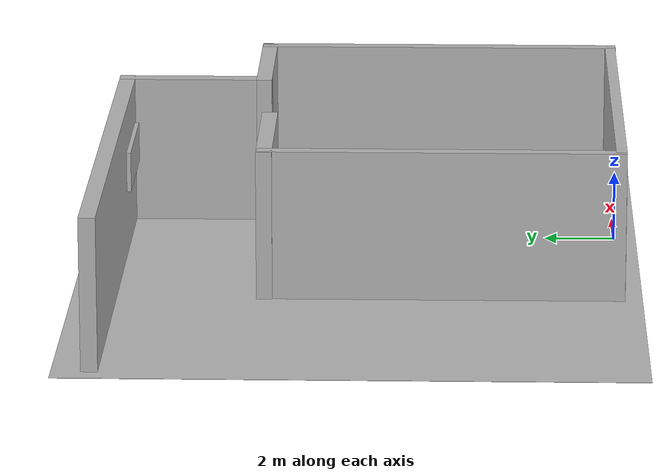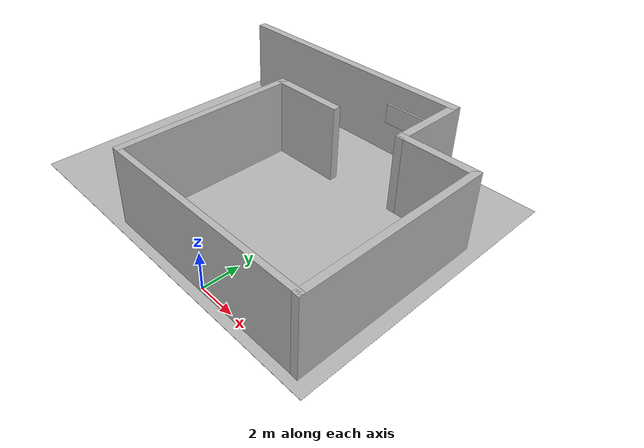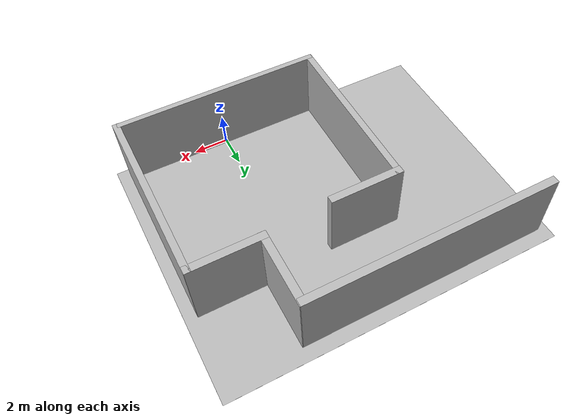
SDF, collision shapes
<?xml version="1.0"?>
<sdf version="1.3">
  <model name="Starting Pen">
    <static>true</static>
    <link name="link">
      <collision name="wall_01">
        <pose>-0.0 0 2.14 0 0 0</pose>
        <geometry>
          <box>
            <size>12.15 0.31 4.28</size>
          </box>
        </geometry>
      </collision>

      <collision name="wall_02">
        <pose>-5.28 14.3205 2.14 0 0 0</pose>
        <geometry>
          <box>
            <size>14.8 0.46 4.28</size>
          </box>
        </geometry>
      </collision>

      <collision name="wall_03">
        <pose>-5.91 5.0 2.14 0 0 0</pose>
        <geometry>
          <box>
            <size>0.385 10.3 4.28</size>
          </box>
        </geometry>
      </collision>

      <collision name="wall_04">
        <pose>5.91 5.161 2.14 0 0 0</pose>
        <geometry>
          <box>
            <size>0.385 10.66 4.28</size>
          </box>
        </geometry>
      </collision>

      <collision name="wall_05">
        <pose>3.9 10.285 2.14 0 0 0</pose>
        <geometry>
          <box>
            <size>4.38 0.45 4.28</size>
          </box>
        </geometry>
      </collision>

      <collision name="wall_06">
        <pose>-4.0 9.95 2.14 0 0 0</pose>
        <geometry>
          <box>
            <size>4.25 0.45 4.28</size>
          </box>
        </geometry>
      </collision>

      <collision name="wall_07">
        <pose>1.94 12.3 2.14 0 0 0</pose>
        <geometry>
          <box>
            <size>0.45 4.5 4.28</size>
          </box>
        </geometry>
      </collision>

      <collision name="wall_arrow">
        <pose>-0.232 14.03 2.46 0 0 0</pose>
        <geometry>
          <box>
            <size>3.33 0.12 1.16</size>
          </box>
        </geometry>
      </collision>

      <collision name="collision_floor">
        <pose>-3.21 7.355 0 0 0 0</pose>
        <geometry>
          <box>
            <size>20 16 0.01</size>
          </box>
        </geometry>
        <surface>
          <friction>
            <ode>
              <mu>100</mu>
              <mu2>50</mu2>
            </ode>
          </friction>
        </surface>
      </collision>

      <visual name="visual_osrf">
        <pose>-5.74 4.99 3 0 0 0</pose>
        <geometry>
          <box>
            <size>0.01 6 1.0</size>
          </box>
        </geometry>
        <material>
          <script>
            <uri>model://../model_source/models/starting_pen/materials/scripts</uri>
            <uri>model://../model_source/models/starting_pen/materials/textures</uri>
            <name>StartingPen/OSRF</name>
          </script>
        </material>
      </visual>

      <visual name="visual_osrf_2">
        <pose>5.74 4.99 3 0 0 0</pose>
        <geometry>
          <box>
            <size>0.01 6 1.0</size>
          </box>
        </geometry>
        <material>
          <script>
            <uri>model://../model_source/models/starting_pen/materials/scripts</uri>
            <uri>model://../model_source/models/starting_pen/materials/textures</uri>
            <name>StartingPen/OSRF</name>
          </script>
        </material>
      </visual>

      <visual name="visual">
        <geometry>
          <mesh>
            <uri>model://../model_source/models/starting_pen/meshes/starting_pen.dae</uri>
          </mesh>
        </geometry>
      </visual>

      <visual name='visual_floor_0'>
        <pose>-12.21 0.35 0 0 0 0</pose>

        <geometry>
          <box>
            <size>2 2 0.01</size>
          </box>
        </geometry>
        <material>
          <script>
            <uri>model://../model_source/models/starting_pen/materials/scripts</uri>
            <uri>model://../model_source/models/starting_pen/materials/textures</uri>
            <name>StartingPen/Floor</name>
          </script>
        </material>
      </visual>

      <visual name='visual_floor_1'>
        <pose>-10.21 0.35 0 0 0 0</pose>

        <geometry>
          <box>
            <size>2 2 0.01</size>
          </box>
        </geometry>
        <material>
          <script>
            <uri>model://../model_source/models/starting_pen/materials/scripts</uri>
            <uri>model://../model_source/models/starting_pen/materials/textures</uri>
            <name>StartingPen/Floor</name>
          </script>
        </material>
      </visual>

      <visual name='visual_floor_2'>
        <pose>-8.21 0.35 0 0 0 0</pose>

        <geometry>
          <box>
            <size>2 2 0.01</size>
          </box>
        </geometry>
        <material>
          <script>
            <uri>model://../model_source/models/starting_pen/materials/scripts</uri>
            <uri>model://../model_source/models/starting_pen/materials/textures</uri>
            <name>StartingPen/Floor</name>
          </script>
        </material>
      </visual>

      <visual name='visual_floor_3'>
        <pose>-6.21 0.35 0 0 0 0</pose>

        <geometry>
          <box>
            <size>2 2 0.01</size>
          </box>
        </geometry>
        <material>
          <script>
            <uri>model://../model_source/models/starting_pen/materials/scripts</uri>
            <uri>model://../model_source/models/starting_pen/materials/textures</uri>
            <name>StartingPen/Floor</name>
          </script>
        </material>
      </visual>

      <visual name='visual_floor_4'>
        <pose>-4.21 0.35 0 0 0 0</pose>

        <geometry>
          <box>
            <size>2 2 0.01</size>
          </box>
        </geometry>
        <material>
          <script>
            <uri>model://../model_source/models/starting_pen/materials/scripts</uri>
            <uri>model://../model_source/models/starting_pen/materials/textures</uri>
            <name>StartingPen/Floor</name>
          </script>
        </material>
      </visual>

      <visual name='visual_floor_5'>
        <pose>-2.21 0.35 0 0 0 0</pose>

        <geometry>
          <box>
            <size>2 2 0.01</size>
          </box>
        </geometry>
        <material>
          <script>
            <uri>model://../model_source/models/starting_pen/materials/scripts</uri>
            <uri>model://../model_source/models/starting_pen/materials/textures</uri>
            <name>StartingPen/Floor</name>
          </script>
        </material>
      </visual>

      <visual name='visual_floor_6'>
        <pose>-0.21 0.35 0 0 0 0</pose>

        <geometry>
          <box>
            <size>2 2 0.01</size>
          </box>
        </geometry>
        <material>
          <script>
            <uri>model://../model_source/models/starting_pen/materials/scripts</uri>
            <uri>model://../model_source/models/starting_pen/materials/textures</uri>
            <name>StartingPen/Floor</name>
          </script>
        </material>
      </visual>

      <visual name='visual_floor_7'>
        <pose>1.79 0.35 0 0 0 1.5707</pose>

        <geometry>
          <box>
            <size>2 2 0.01</size>
          </box>
        </geometry>
        <material>
          <script>
            <uri>model://../model_source/models/starting_pen/materials/scripts</uri>
            <uri>model://../model_source/models/starting_pen/materials/textures</uri>
            <name>StartingPen/FloorStripped</name>
          </script>
        </material>
      </visual>

      <visual name='visual_floor_8'>
        <pose>3.79 0.35 0 0 0 0</pose>

        <geometry>
          <box>
            <size>2 2 0.01</size>
          </box>
        </geometry>
        <material>
          <script>
            <uri>model://../model_source/models/starting_pen/materials/scripts</uri>
            <uri>model://../model_source/models/starting_pen/materials/textures</uri>
            <name>StartingPen/Floor</name>
          </script>
        </material>
      </visual>

      <visual name='visual_floor_9'>
        <pose>5.79 0.35 0 0 0 0</pose>

        <geometry>
          <box>
            <size>2 2 0.01</size>
          </box>
        </geometry>
        <material>
          <script>
            <uri>model://../model_source/models/starting_pen/materials/scripts</uri>
            <uri>model://../model_source/models/starting_pen/materials/textures</uri>
            <name>StartingPen/Floor</name>
          </script>
        </material>
      </visual>

      <visual name='visual_floor_10'>
        <pose>-12.21 2.35 0 0 0 1.5707</pose>

        <geometry>
          <box>
            <size>2 2 0.01</size>
          </box>
        </geometry>
        <material>
          <script>
            <uri>model://../model_source/models/starting_pen/materials/scripts</uri>
            <uri>model://../model_source/models/starting_pen/materials/textures</uri>
            <name>StartingPen/FloorStripped</name>
          </script>
        </material>
      </visual>

      <visual name='visual_floor_11'>
        <pose>-10.21 2.35 0 0 0 0</pose>

        <geometry>
          <box>
            <size>2 2 0.01</size>
          </box>
        </geometry>
        <material>
          <script>
            <uri>model://../model_source/models/starting_pen/materials/scripts</uri>
            <uri>model://../model_source/models/starting_pen/materials/textures</uri>
            <name>StartingPen/Floor</name>
          </script>
        </material>
      </visual>

      <visual name='visual_floor_12'>
        <pose>-8.21 2.35 0 0 0 0</pose>

        <geometry>
          <box>
            <size>2 2 0.01</size>
          </box>
        </geometry>
        <material>
          <script>
            <uri>model://../model_source/models/starting_pen/materials/scripts</uri>
            <uri>model://../model_source/models/starting_pen/materials/textures</uri>
            <name>StartingPen/Floor</name>
          </script>
        </material>
      </visual>

      <visual name='visual_floor_13'>
        <pose>-6.21 2.35 0 0 0 0</pose>

        <geometry>
          <box>
            <size>2 2 0.01</size>
          </box>
        </geometry>
        <material>
          <script>
            <uri>model://../model_source/models/starting_pen/materials/scripts</uri>
            <uri>model://../model_source/models/starting_pen/materials/textures</uri>
            <name>StartingPen/Floor</name>
          </script>
        </material>
      </visual>

      <visual name='visual_floor_14'>
        <pose>-4.21 2.35 0 0 0 0</pose>

        <geometry>
          <box>
            <size>2 2 0.01</size>
          </box>
        </geometry>
        <material>
          <script>
            <uri>model://../model_source/models/starting_pen/materials/scripts</uri>
            <uri>model://../model_source/models/starting_pen/materials/textures</uri>
            <name>StartingPen/Floor</name>
          </script>
        </material>
      </visual>

      <visual name='visual_floor_15'>
        <pose>-2.21 2.35 0 0 0 0</pose>

        <geometry>
          <box>
            <size>2 2 0.01</size>
          </box>
        </geometry>
        <material>
          <script>
            <uri>model://../model_source/models/starting_pen/materials/scripts</uri>
            <uri>model://../model_source/models/starting_pen/materials/textures</uri>
            <name>StartingPen/Floor</name>
          </script>
        </material>
      </visual>

      <visual name='visual_floor_16'>
        <pose>-0.21 2.35 0 0 0 1.5707</pose>

        <geometry>
          <box>
            <size>2 2 0.01</size>
          </box>
        </geometry>
        <material>
          <script>
            <uri>model://../model_source/models/starting_pen/materials/scripts</uri>
            <uri>model://../model_source/models/starting_pen/materials/textures</uri>
            <name>StartingPen/FloorStripped</name>
          </script>
        </material>
      </visual>

      <visual name='visual_floor_17'>
        <pose>1.79 2.35 0 0 0 1.5707</pose>

        <geometry>
          <box>
            <size>2 2 0.01</size>
          </box>
        </geometry>
        <material>
          <script>
            <uri>model://../model_source/models/starting_pen/materials/scripts</uri>
            <uri>model://../model_source/models/starting_pen/materials/textures</uri>
            <name>StartingPen/Floor</name>
          </script>
        </material>
      </visual>

      <visual name='visual_floor_18'>
        <pose>3.79 2.35 0 0 0 0</pose>

        <geometry>
          <box>
            <size>2 2 0.01</size>
          </box>
        </geometry>
        <material>
          <script>
            <uri>model://../model_source/models/starting_pen/materials/scripts</uri>
            <uri>model://../model_source/models/starting_pen/materials/textures</uri>
            <name>StartingPen/Floor</name>
          </script>
        </material>
      </visual>

      <visual name='visual_floor_19'>
        <pose>5.79 2.35 0 0 0 0</pose>

        <geometry>
          <box>
            <size>2 2 0.01</size>
          </box>
        </geometry>
        <material>
          <script>
            <uri>model://../model_source/models/starting_pen/materials/scripts</uri>
            <uri>model://../model_source/models/starting_pen/materials/textures</uri>
            <name>StartingPen/Floor</name>
          </script>
        </material>
      </visual>

      <visual name='visual_floor_20'>
        <pose>-12.21 4.35 0 0 0 0</pose>

        <geometry>
          <box>
            <size>2 2 0.01</size>
          </box>
        </geometry>
        <material>
          <script>
            <uri>model://../model_source/models/starting_pen/materials/scripts</uri>
            <uri>model://../model_source/models/starting_pen/materials/textures</uri>
            <name>StartingPen/Floor</name>
          </script>
        </material>
      </visual>

      <visual name='visual_floor_21'>
        <pose>-10.21 4.35 0 0 0 0</pose>

        <geometry>
          <box>
            <size>2 2 0.01</size>
          </box>
        </geometry>
        <material>
          <script>
            <uri>model://../model_source/models/starting_pen/materials/scripts</uri>
            <uri>model://../model_source/models/starting_pen/materials/textures</uri>
            <name>StartingPen/Floor</name>
          </script>
        </material>
      </visual>

      <visual name='visual_floor_22'>
        <pose>-8.21 4.35 0 0 0 1.5707</pose>

        <geometry>
          <box>
            <size>2 2 0.01</size>
          </box>
        </geometry>
        <material>
          <script>
            <uri>model://../model_source/models/starting_pen/materials/scripts</uri>
            <uri>model://../model_source/models/starting_pen/materials/textures</uri>
            <name>StartingPen/FloorStripped</name>
          </script>
        </material>
      </visual>

      <visual name='visual_floor_23'>
        <pose>-6.21 4.35 0 0 0 0</pose>

        <geometry>
          <box>
            <size>2 2 0.01</size>
          </box>
        </geometry>
        <material>
          <script>
            <uri>model://../model_source/models/starting_pen/materials/scripts</uri>
            <uri>model://../model_source/models/starting_pen/materials/textures</uri>
            <name>StartingPen/Floor</name>
          </script>
        </material>
      </visual>

      <visual name='visual_floor_24'>
        <pose>-4.21 4.35 0 0 0 0</pose>

        <geometry>
          <box>
            <size>2 2 0.01</size>
          </box>
        </geometry>
        <material>
          <script>
            <uri>model://../model_source/models/starting_pen/materials/scripts</uri>
            <uri>model://../model_source/models/starting_pen/materials/textures</uri>
            <name>StartingPen/Floor</name>
          </script>
        </material>
      </visual>

      <visual name='visual_floor_25'>
        <pose>-2.21 4.35 0 0 0 0</pose>

        <geometry>
          <box>
            <size>2 2 0.01</size>
          </box>
        </geometry>
        <material>
          <script>
            <uri>model://../model_source/models/starting_pen/materials/scripts</uri>
            <uri>model://../model_source/models/starting_pen/materials/textures</uri>
            <name>StartingPen/Floor</name>
          </script>
        </material>
      </visual>

      <visual name='visual_floor_26'>
        <pose>-0.21 4.35 0 0 0 0</pose>

        <geometry>
          <box>
            <size>2 2 0.01</size>
          </box>
        </geometry>
        <material>
          <script>
            <uri>model://../model_source/models/starting_pen/materials/scripts</uri>
            <uri>model://../model_source/models/starting_pen/materials/textures</uri>
            <name>StartingPen/Floor</name>
          </script>
        </material>
      </visual>

      <visual name='visual_floor_27'>
        <pose>1.79 4.35 0 0 0 0</pose>

        <geometry>
          <box>
            <size>2 2 0.01</size>
          </box>
        </geometry>
        <material>
          <script>
            <uri>model://../model_source/models/starting_pen/materials/scripts</uri>
            <uri>model://../model_source/models/starting_pen/materials/textures</uri>
            <name>StartingPen/Floor</name>
          </script>
        </material>
      </visual>

      <visual name='visual_floor_28'>
        <pose>3.79 4.35 0 0 0 0</pose>

        <geometry>
          <box>
            <size>2 2 0.01</size>
          </box>
        </geometry>
        <material>
          <script>
            <uri>model://../model_source/models/starting_pen/materials/scripts</uri>
            <uri>model://../model_source/models/starting_pen/materials/textures</uri>
            <name>StartingPen/Floor</name>
          </script>
        </material>
      </visual>

      <visual name='visual_floor_29'>
        <pose>5.79 4.35 0 0 0 1.5707</pose>

        <geometry>
          <box>
            <size>2 2 0.01</size>
          </box>
        </geometry>
        <material>
          <script>
            <uri>model://../model_source/models/starting_pen/materials/scripts</uri>
            <uri>model://../model_source/models/starting_pen/materials/textures</uri>
            <name>StartingPen/FloorStripped</name>
          </script>
        </material>
      </visual>

      <visual name='visual_floor_30'>
        <pose>-12.21 6.35 0 0 0 0</pose>

        <geometry>
          <box>
            <size>2 2 0.01</size>
          </box>
        </geometry>
        <material>
          <script>
            <uri>model://../model_source/models/starting_pen/materials/scripts</uri>
            <uri>model://../model_source/models/starting_pen/materials/textures</uri>
            <name>StartingPen/Floor</name>
          </script>
        </material>
      </visual>

      <visual name='visual_floor_31'>
        <pose>-10.21 6.35 0 0 0 0</pose>

        <geometry>
          <box>
            <size>2 2 0.01</size>
          </box>
        </geometry>
        <material>
          <script>
            <uri>model://../model_source/models/starting_pen/materials/scripts</uri>
            <uri>model://../model_source/models/starting_pen/materials/textures</uri>
            <name>StartingPen/Floor</name>
          </script>
        </material>
      </visual>

      <visual name='visual_floor_32'>
        <pose>-8.21 6.35 0 0 0 0</pose>

        <geometry>
          <box>
            <size>2 2 0.01</size>
          </box>
        </geometry>
        <material>
          <script>
            <uri>model://../model_source/models/starting_pen/materials/scripts</uri>
            <uri>model://../model_source/models/starting_pen/materials/textures</uri>
            <name>StartingPen/Floor</name>
          </script>
        </material>
      </visual>

      <visual name='visual_floor_33'>
        <pose>-6.21 6.35 0 0 0 1.5707</pose>

        <geometry>
          <box>
            <size>2 2 0.01</size>
          </box>
        </geometry>
        <material>
          <script>
            <uri>model://../model_source/models/starting_pen/materials/scripts</uri>
            <uri>model://../model_source/models/starting_pen/materials/textures</uri>
            <name>StartingPen/FloorStripped</name>
          </script>
        </material>
      </visual>

      <visual name='visual_floor_34'>
        <pose>-4.21 6.35 0 0 0 0</pose>

        <geometry>
          <box>
            <size>2 2 0.01</size>
          </box>
        </geometry>
        <material>
          <script>
            <uri>model://../model_source/models/starting_pen/materials/scripts</uri>
            <uri>model://../model_source/models/starting_pen/materials/textures</uri>
            <name>StartingPen/Floor</name>
          </script>
        </material>
      </visual>

      <visual name='visual_floor_35'>
        <pose>-2.21 6.35 0 0 0 1.5707</pose>

        <geometry>
          <box>
            <size>2 2 0.01</size>
          </box>
        </geometry>
        <material>
          <script>
            <uri>model://../model_source/models/starting_pen/materials/scripts</uri>
            <uri>model://../model_source/models/starting_pen/materials/textures</uri>
            <name>StartingPen/FloorStripped</name>
          </script>
        </material>
      </visual>

      <visual name='visual_floor_36'>
        <pose>-0.21 6.35 0 0 0 0</pose>

        <geometry>
          <box>
            <size>2 2 0.01</size>
          </box>
        </geometry>
        <material>
          <script>
            <uri>model://../model_source/models/starting_pen/materials/scripts</uri>
            <uri>model://../model_source/models/starting_pen/materials/textures</uri>
            <name>StartingPen/Floor</name>
          </script>
        </material>
      </visual>

      <visual name='visual_floor_37'>
        <pose>1.79 6.35 0 0 0 0</pose>

        <geometry>
          <box>
            <size>2 2 0.01</size>
          </box>
        </geometry>
        <material>
          <script>
            <uri>model://../model_source/models/starting_pen/materials/scripts</uri>
            <uri>model://../model_source/models/starting_pen/materials/textures</uri>
            <name>StartingPen/Floor</name>
          </script>
        </material>
      </visual>

      <visual name='visual_floor_38'>
        <pose>3.79 6.35 0 0 0 0</pose>

        <geometry>
          <box>
            <size>2 2 0.01</size>
          </box>
        </geometry>
        <material>
          <script>
            <uri>model://../model_source/models/starting_pen/materials/scripts</uri>
            <uri>model://../model_source/models/starting_pen/materials/textures</uri>
            <name>StartingPen/Floor</name>
          </script>
        </material>
      </visual>

      <visual name='visual_floor_39'>
        <pose>5.79 6.35 0 0 0 0</pose>

        <geometry>
          <box>
            <size>2 2 0.01</size>
          </box>
        </geometry>
        <material>
          <script>
            <uri>model://../model_source/models/starting_pen/materials/scripts</uri>
            <uri>model://../model_source/models/starting_pen/materials/textures</uri>
            <name>StartingPen/Floor</name>
          </script>
        </material>
      </visual>

      <visual name='visual_floor_40'>
        <pose>-12.21 8.35 0 0 0 0</pose>

        <geometry>
          <box>
            <size>2 2 0.01</size>
          </box>
        </geometry>
        <material>
          <script>
            <uri>model://../model_source/models/starting_pen/materials/scripts</uri>
            <uri>model://../model_source/models/starting_pen/materials/textures</uri>
            <name>StartingPen/Floor</name>
          </script>
        </material>
      </visual>

      <visual name='visual_floor_41'>
        <pose>-10.21 8.35 0 0 0 0</pose>

        <geometry>
          <box>
            <size>2 2 0.01</size>
          </box>
        </geometry>
        <material>
          <script>
            <uri>model://../model_source/models/starting_pen/materials/scripts</uri>
            <uri>model://../model_source/models/starting_pen/materials/textures</uri>
            <name>StartingPen/Floor</name>
          </script>
        </material>
      </visual>

      <visual name='visual_floor_42'>
        <pose>-8.21 8.35 0 0 0 1.5707</pose>

        <geometry>
          <box>
            <size>2 2 0.01</size>
          </box>
        </geometry>
        <material>
          <script>
            <uri>model://../model_source/models/starting_pen/materials/scripts</uri>
            <uri>model://../model_source/models/starting_pen/materials/textures</uri>
            <name>StartingPen/FloorStripped</name>
          </script>
        </material>
      </visual>

      <visual name='visual_floor_43'>
        <pose>-6.21 8.35 0 0 0 0</pose>

        <geometry>
          <box>
            <size>2 2 0.01</size>
          </box>
        </geometry>
        <material>
          <script>
            <uri>model://../model_source/models/starting_pen/materials/scripts</uri>
            <uri>model://../model_source/models/starting_pen/materials/textures</uri>
            <name>StartingPen/Floor</name>
          </script>
        </material>
      </visual>

      <visual name='visual_floor_44'>
        <pose>-4.21 8.35 0 0 0 0</pose>

        <geometry>
          <box>
            <size>2 2 0.01</size>
          </box>
        </geometry>
        <material>
          <script>
            <uri>model://../model_source/models/starting_pen/materials/scripts</uri>
            <uri>model://../model_source/models/starting_pen/materials/textures</uri>
            <name>StartingPen/Floor</name>
          </script>
        </material>
      </visual>

      <visual name='visual_floor_45'>
        <pose>-2.21 8.35 0 0 0 0</pose>

        <geometry>
          <box>
            <size>2 2 0.01</size>
          </box>
        </geometry>
        <material>
          <script>
            <uri>model://../model_source/models/starting_pen/materials/scripts</uri>
            <uri>model://../model_source/models/starting_pen/materials/textures</uri>
            <name>StartingPen/Floor</name>
          </script>
        </material>
      </visual>

      <visual name='visual_floor_46'>
        <pose>-0.21 8.35 0 0 0 1.5707</pose>

        <geometry>
          <box>
            <size>2 2 0.01</size>
          </box>
        </geometry>
        <material>
          <script>
            <uri>model://../model_source/models/starting_pen/materials/scripts</uri>
            <uri>model://../model_source/models/starting_pen/materials/textures</uri>
            <name>StartingPen/FloorStripped</name>
          </script>
        </material>
      </visual>

      <visual name='visual_floor_47'>
        <pose>1.79 8.35 0 0 0 0</pose>

        <geometry>
          <box>
            <size>2 2 0.01</size>
          </box>
        </geometry>
        <material>
          <script>
            <uri>model://../model_source/models/starting_pen/materials/scripts</uri>
            <uri>model://../model_source/models/starting_pen/materials/textures</uri>
            <name>StartingPen/Floor</name>
          </script>
        </material>
      </visual>

      <visual name='visual_floor_48'>
        <pose>3.79 8.35 0 0 0 0</pose>

        <geometry>
          <box>
            <size>2 2 0.01</size>
          </box>
        </geometry>
        <material>
          <script>
            <uri>model://../model_source/models/starting_pen/materials/scripts</uri>
            <uri>model://../model_source/models/starting_pen/materials/textures</uri>
            <name>StartingPen/Floor</name>
          </script>
        </material>
      </visual>

      <visual name='visual_floor_49'>
        <pose>5.79 8.35 0 0 0 0</pose>

        <geometry>
          <box>
            <size>2 2 0.01</size>
          </box>
        </geometry>
        <material>
          <script>
            <uri>model://../model_source/models/starting_pen/materials/scripts</uri>
            <uri>model://../model_source/models/starting_pen/materials/textures</uri>
            <name>StartingPen/Floor</name>
          </script>
        </material>
      </visual>

      <visual name='visual_floor_50'>
        <pose>-12.21 10.35 0 0 0 0</pose>

        <geometry>
          <box>
            <size>2 2 0.01</size>
          </box>
        </geometry>
        <material>
          <script>
            <uri>model://../model_source/models/starting_pen/materials/scripts</uri>
            <uri>model://../model_source/models/starting_pen/materials/textures</uri>
            <name>StartingPen/Floor</name>
          </script>
        </material>
      </visual>

      <visual name='visual_floor_51'>
        <pose>-10.21 10.35 0 0 0 0</pose>

        <geometry>
          <box>
            <size>2 2 0.01</size>
          </box>
        </geometry>
        <material>
          <script>
            <uri>model://../model_source/models/starting_pen/materials/scripts</uri>
            <uri>model://../model_source/models/starting_pen/materials/textures</uri>
            <name>StartingPen/Floor</name>
          </script>
        </material>
      </visual>

      <visual name='visual_floor_52'>
        <pose>-8.21 10.35 0 0 0 0</pose>

        <geometry>
          <box>
            <size>2 2 0.01</size>
          </box>
        </geometry>
        <material>
          <script>
            <uri>model://../model_source/models/starting_pen/materials/scripts</uri>
            <uri>model://../model_source/models/starting_pen/materials/textures</uri>
            <name>StartingPen/Floor</name>
          </script>
        </material>
      </visual>

      <visual name='visual_floor_53'>
        <pose>-6.21 10.35 0 0 0 1.5707</pose>

        <geometry>
          <box>
            <size>2 2 0.01</size>
          </box>
        </geometry>
        <material>
          <script>
            <uri>model://../model_source/models/starting_pen/materials/scripts</uri>
            <uri>model://../model_source/models/starting_pen/materials/textures</uri>
            <name>StartingPen/FloorStripped</name>
          </script>
        </material>
      </visual>

      <visual name='visual_floor_54'>
        <pose>-4.21 10.35 0 0 0 0</pose>

        <geometry>
          <box>
            <size>2 2 0.01</size>
          </box>
        </geometry>
        <material>
          <script>
            <uri>model://../model_source/models/starting_pen/materials/scripts</uri>
            <uri>model://../model_source/models/starting_pen/materials/textures</uri>
            <name>StartingPen/Floor</name>
          </script>
        </material>
      </visual>

      <visual name='visual_floor_55'>
        <pose>-2.21 10.35 0 0 0 0</pose>

        <geometry>
          <box>
            <size>2 2 0.01</size>
          </box>
        </geometry>
        <material>
          <script>
            <uri>model://../model_source/models/starting_pen/materials/scripts</uri>
            <uri>model://../model_source/models/starting_pen/materials/textures</uri>
            <name>StartingPen/Floor</name>
          </script>
        </material>
      </visual>

      <visual name='visual_floor_56'>
        <pose>-0.21 10.35 0 0 0 0</pose>

        <geometry>
          <box>
            <size>2 2 0.01</size>
          </box>
        </geometry>
        <material>
          <script>
            <uri>model://../model_source/models/starting_pen/materials/scripts</uri>
            <uri>model://../model_source/models/starting_pen/materials/textures</uri>
            <name>StartingPen/Floor</name>
          </script>
        </material>
      </visual>

      <visual name='visual_floor_57'>
        <pose>1.79 10.35 0 0 0 0</pose>

        <geometry>
          <box>
            <size>2 2 0.01</size>
          </box>
        </geometry>
        <material>
          <script>
            <uri>model://../model_source/models/starting_pen/materials/scripts</uri>
            <uri>model://../model_source/models/starting_pen/materials/textures</uri>
            <name>StartingPen/Floor</name>
          </script>
        </material>
      </visual>

      <visual name='visual_floor_58'>
        <pose>3.79 10.35 0 0 0 0</pose>

        <geometry>
          <box>
            <size>2 2 0.01</size>
          </box>
        </geometry>
        <material>
          <script>
            <uri>model://../model_source/models/starting_pen/materials/scripts</uri>
            <uri>model://../model_source/models/starting_pen/materials/textures</uri>
            <name>StartingPen/Floor</name>
          </script>
        </material>
      </visual>

      <visual name='visual_floor_59'>
        <pose>5.79 10.35 0 0 0 0</pose>

        <geometry>
          <box>
            <size>2 2 0.01</size>
          </box>
        </geometry>
        <material>
          <script>
            <uri>model://../model_source/models/starting_pen/materials/scripts</uri>
            <uri>model://../model_source/models/starting_pen/materials/textures</uri>
            <name>StartingPen/Floor</name>
          </script>
        </material>
      </visual>

      <visual name='visual_floor_60'>
        <pose>-12.21 12.35 0 0 0 1.5707</pose>

        <geometry>
          <box>
            <size>2 2 0.01</size>
          </box>
        </geometry>
        <material>
          <script>
            <uri>model://../model_source/models/starting_pen/materials/scripts</uri>
            <uri>model://../model_source/models/starting_pen/materials/textures</uri>
            <name>StartingPen/FloorStripped</name>
          </script>
        </material>
      </visual>

      <visual name='visual_floor_61'>
        <pose>-10.21 12.35 0 0 0 0</pose>

        <geometry>
          <box>
            <size>2 2 0.01</size>
          </box>
        </geometry>
        <material>
          <script>
            <uri>model://../model_source/models/starting_pen/materials/scripts</uri>
            <uri>model://../model_source/models/starting_pen/materials/textures</uri>
            <name>StartingPen/Floor</name>
          </script>
        </material>
      </visual>

      <visual name='visual_floor_62'>
        <pose>-8.21 12.35 0 0 0 0</pose>

        <geometry>
          <box>
            <size>2 2 0.01</size>
          </box>
        </geometry>
        <material>
          <script>
            <uri>model://../model_source/models/starting_pen/materials/scripts</uri>
            <uri>model://../model_source/models/starting_pen/materials/textures</uri>
            <name>StartingPen/Floor</name>
          </script>
        </material>
      </visual>

      <visual name='visual_floor_63'>
        <pose>-6.21 12.35 0 0 0 0</pose>

        <geometry>
          <box>
            <size>2 2 0.01</size>
          </box>
        </geometry>
        <material>
          <script>
            <uri>model://../model_source/models/starting_pen/materials/scripts</uri>
            <uri>model://../model_source/models/starting_pen/materials/textures</uri>
            <name>StartingPen/Floor</name>
          </script>
        </material>
      </visual>

      <visual name='visual_floor_64'>
        <pose>-4.21 12.35 0 0 0 0</pose>

        <geometry>
          <box>
            <size>2 2 0.01</size>
          </box>
        </geometry>
        <material>
          <script>
            <uri>model://../model_source/models/starting_pen/materials/scripts</uri>
            <uri>model://../model_source/models/starting_pen/materials/textures</uri>
            <name>StartingPen/Floor</name>
          </script>
        </material>
      </visual>

      <visual name='visual_floor_65'>
        <pose>-2.21 12.35 0 0 0 1.5707</pose>

        <geometry>
          <box>
            <size>2 2 0.01</size>
          </box>
        </geometry>
        <material>
          <script>
            <uri>model://../model_source/models/starting_pen/materials/scripts</uri>
            <uri>model://../model_source/models/starting_pen/materials/textures</uri>
            <name>StartingPen/FloorStripped</name>
          </script>
        </material>
      </visual>

      <visual name='visual_floor_66'>
        <pose>-0.21 12.35 0 0 0 0</pose>

        <geometry>
          <box>
            <size>2 2 0.01</size>
          </box>
        </geometry>
        <material>
          <script>
            <uri>model://../model_source/models/starting_pen/materials/scripts</uri>
            <uri>model://../model_source/models/starting_pen/materials/textures</uri>
            <name>StartingPen/Floor</name>
          </script>
        </material>
      </visual>

      <visual name='visual_floor_67'>
        <pose>1.79 12.35 0 0 0 0</pose>

        <geometry>
          <box>
            <size>2 2 0.01</size>
          </box>
        </geometry>
        <material>
          <script>
            <uri>model://../model_source/models/starting_pen/materials/scripts</uri>
            <uri>model://../model_source/models/starting_pen/materials/textures</uri>
            <name>StartingPen/Floor</name>
          </script>
        </material>
      </visual>

      <visual name='visual_floor_68'>
        <pose>3.79 12.35 0 0 0 0</pose>

        <geometry>
          <box>
            <size>2 2 0.01</size>
          </box>
        </geometry>
        <material>
          <script>
            <uri>model://../model_source/models/starting_pen/materials/scripts</uri>
            <uri>model://../model_source/models/starting_pen/materials/textures</uri>
            <name>StartingPen/Floor</name>
          </script>
        </material>
      </visual>

      <visual name='visual_floor_69'>
        <pose>5.79 12.35 0 0 0 0</pose>

        <geometry>
          <box>
            <size>2 2 0.01</size>
          </box>
        </geometry>
        <material>
          <script>
            <uri>model://../model_source/models/starting_pen/materials/scripts</uri>
            <uri>model://../model_source/models/starting_pen/materials/textures</uri>
            <name>StartingPen/Floor</name>
          </script>
        </material>
      </visual>

      <visual name='visual_floor_70'>
        <pose>-12.21 14.35 0 0 0 0</pose>

        <geometry>
          <box>
            <size>2 2 0.01</size>
          </box>
        </geometry>
        <material>
          <script>
            <uri>model://../model_source/models/starting_pen/materials/scripts</uri>
            <uri>model://../model_source/models/starting_pen/materials/textures</uri>
            <name>StartingPen/Floor</name>
          </script>
        </material>
      </visual>

      <visual name='visual_floor_71'>
        <pose>-10.21 14.35 0 0 0 0</pose>

        <geometry>
          <box>
            <size>2 2 0.01</size>
          </box>
        </geometry>
        <material>
          <script>
            <uri>model://../model_source/models/starting_pen/materials/scripts</uri>
            <uri>model://../model_source/models/starting_pen/materials/textures</uri>
            <name>StartingPen/Floor</name>
          </script>
        </material>
      </visual>

      <visual name='visual_floor_72'>
        <pose>-8.21 14.35 0 0 0 0</pose>

        <geometry>
          <box>
            <size>2 2 0.01</size>
          </box>
        </geometry>
        <material>
          <script>
            <uri>model://../model_source/models/starting_pen/materials/scripts</uri>
            <uri>model://../model_source/models/starting_pen/materials/textures</uri>
            <name>StartingPen/Floor</name>
          </script>
        </material>
      </visual>

      <visual name='visual_floor_73'>
        <pose>-6.21 14.35 0 0 0 0</pose>

        <geometry>
          <box>
            <size>2 2 0.01</size>
          </box>
        </geometry>
        <material>
          <script>
            <uri>model://../model_source/models/starting_pen/materials/scripts</uri>
            <uri>model://../model_source/models/starting_pen/materials/textures</uri>
            <name>StartingPen/Floor</name>
          </script>
        </material>
      </visual>

      <visual name='visual_floor_74'>
        <pose>-4.21 14.35 0 0 0 1.5707</pose>

        <geometry>
          <box>
            <size>2 2 0.01</size>
          </box>
        </geometry>
        <material>
          <script>
            <uri>model://../model_source/models/starting_pen/materials/scripts</uri>
            <uri>model://../model_source/models/starting_pen/materials/textures</uri>
            <name>StartingPen/FloorStripped</name>
          </script>
        </material>
      </visual>

      <visual name='visual_floor_75'>
        <pose>-2.21 14.35 0 0 0 1.5707</pose>

        <geometry>
          <box>
            <size>2 2 0.01</size>
          </box>
        </geometry>
        <material>
          <script>
            <uri>model://../model_source/models/starting_pen/materials/scripts</uri>
            <uri>model://../model_source/models/starting_pen/materials/textures</uri>
            <name>StartingPen/Floor</name>
          </script>
        </material>
      </visual>

      <visual name='visual_floor_76'>
        <pose>-0.21 14.35 0 0 0 0</pose>

        <geometry>
          <box>
            <size>2 2 0.01</size>
          </box>
        </geometry>
        <material>
          <script>
            <uri>model://../model_source/models/starting_pen/materials/scripts</uri>
            <uri>model://../model_source/models/starting_pen/materials/textures</uri>
            <name>StartingPen/Floor</name>
          </script>
        </material>
      </visual>

      <visual name='visual_floor_77'>
        <pose>1.79 14.35 0 0 0 0</pose>

        <geometry>
          <box>
            <size>2 2 0.01</size>
          </box>
        </geometry>
        <material>
          <script>
            <uri>model://../model_source/models/starting_pen/materials/scripts</uri>
            <uri>model://../model_source/models/starting_pen/materials/textures</uri>
            <name>StartingPen/Floor</name>
          </script>
        </material>
      </visual>

      <visual name='visual_floor_78'>
        <pose>3.79 14.35 0 0 0 0</pose>

        <geometry>
          <box>
            <size>2 2 0.01</size>
          </box>
        </geometry>
        <material>
          <script>
            <uri>model://../model_source/models/starting_pen/materials/scripts</uri>
            <uri>model://../model_source/models/starting_pen/materials/textures</uri>
            <name>StartingPen/FloorStripped</name>
          </script>
        </material>
      </visual>

      <visual name='visual_floor_79'>
        <pose>5.79 14.35 0 0 0 0</pose>

        <geometry>
          <box>
            <size>2 2 0.01</size>
          </box>
        </geometry>
        <material>
          <script>
            <uri>model://../model_source/models/starting_pen/materials/scripts</uri>
            <uri>model://../model_source/models/starting_pen/materials/textures</uri>
            <name>StartingPen/Floor</name>
          </script>
        </material>
      </visual>

    </link>
  </model>
</sdf>
